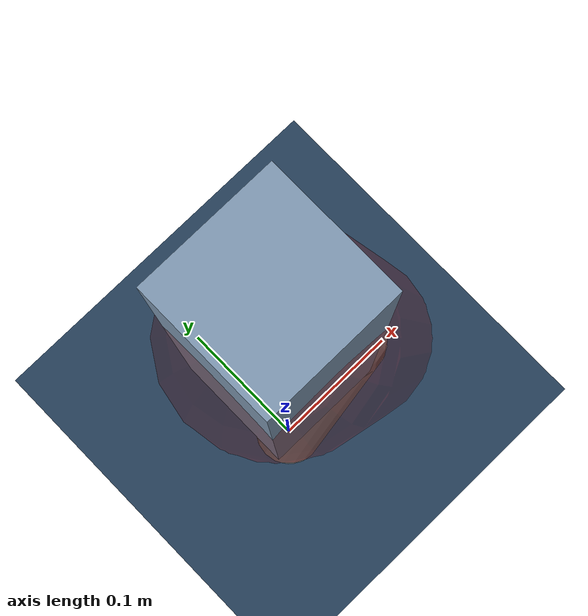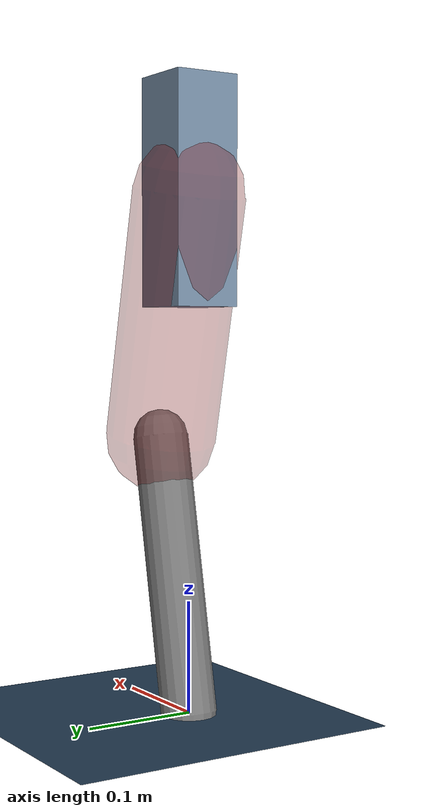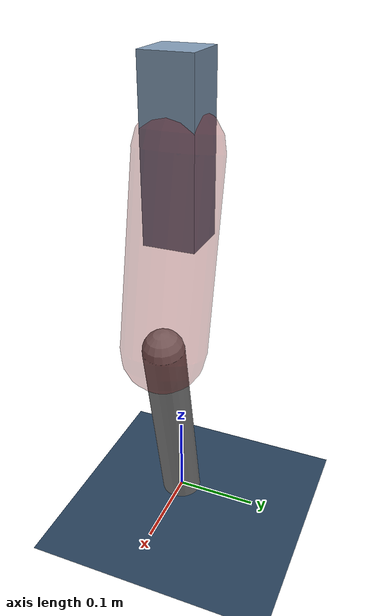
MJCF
<mujoco model="Hopper2D">
	<compiler inertiafromgeom="true" angle="radian" />
	<option timestep="0.001" integrator="implicit" cone="elliptic" solver="Newton" tolerance="1e-10" />

	<default>
		<geom contype="1" conaffinity="1" condim="3" friction="2 0.005 0.0001" solref="0.005 1" />
		<joint limited="true" damping="0.1" />
	</default>

	<asset>
		<texture name="skybox" type="skybox" builtin="gradient" rgb1=".4 .6 .8" rgb2="0 0 0" width="800" height="800" />
		<texture name="grid" type="2d" builtin="checker" rgb1=".1 .2 .3" rgb2=".2 .3 .4" width="300" height="300" mark="edge" markrgb=".2 .3 .4" />
		<material name="ground" texture="grid" texrepeat="1 1" texuniform="true" reflectance="0.1" />
		<material name="leg" rgba="0.5 0.6 0.7 1" />
	</asset>

	<worldbody>

		<geom name="floor" type="plane" size="5 5 0.25" material="ground" />

		<light directional="false" diffuse="0.8 0.8 0.8" specular="0.3 0.3 0.3" pos="0 0 2" dir="0 0 -1" />
		<light mode="targetbodycom" target="base" directional="false" diffuse="0.8 0.8 0.8" specular="0.3 0.3 0.3" pos="0 0 2" dir="0 0 -1" />

		<camera name="fixed" pos="0 -2 1" xyaxes="1 0 0 0 0 1" />
		<camera name="tracking" mode="trackcom" pos="0 -3 1" />

		<body name="root" pos="0 0 0.4608404119270747">
			<joint name="slide_x" type="slide" axis="1 0 0" range="-100 100" />
			<joint name="slide_z" type="slide" axis="0 0 1" range="0 10" />

			<body name="base" pos="0 0 0">
				<geom name="torso" type="box" size="0.03 0.03 0.1" mass="1.6230000000000002" material="leg" />

				<body name="link1" pos="0 0 0" euler="0 1.3521976016224293 0">
					<joint type="hinge" axis="0 -1 0" pos="0 0 0" name="hinge1" limited="true" range="-3.14 3.14" stiffness="0" damping="0.1" />
					<geom name="thigh" type="capsule" fromto="0 0 0 0.22217847526594411 0 0" size="0.05" rgba="0.5 0 0 0.3" mass="0.7851640356914547" />

					<body name="link2" pos="0.22217847526594411 0 0" euler="0 0.4135974395938755 0">
						<joint type="hinge" axis="0 -1 0" pos="0 0 0" name="hinge2" limited="true" range="-3.14 3.14" stiffness="0" damping="0.1" />
						<geom name="shank" type="capsule" fromto="0 0 0 0.24866193666113057 0 0" size="0.025" mass="0.44142954932890444" />

					</body>
				</body>
			</body>
		</body>
	</worldbody>

	<actuator>
		<motor name="torque1" joint="hinge1" ctrlrange="-11.200457361026025 11.200457361026025" ctrllimited="true" gear="1" />
		<motor name="torque2" joint="hinge2" ctrlrange="-50.172647435328294 50.172647435328294" ctrllimited="true" gear="1" />
	</actuator>
</mujoco>
